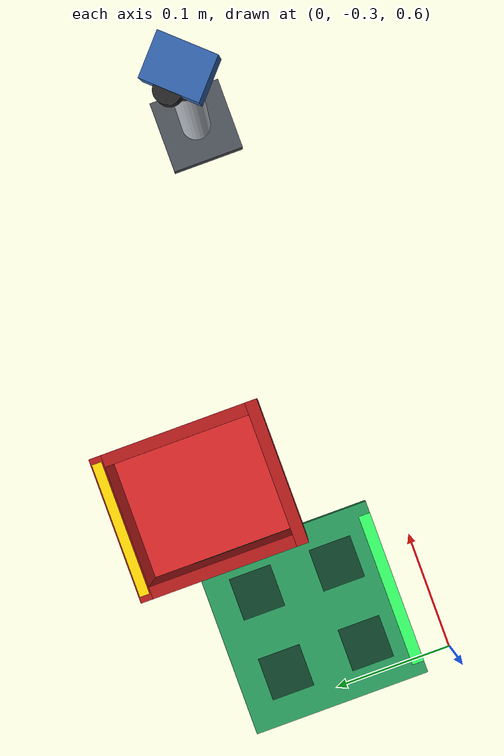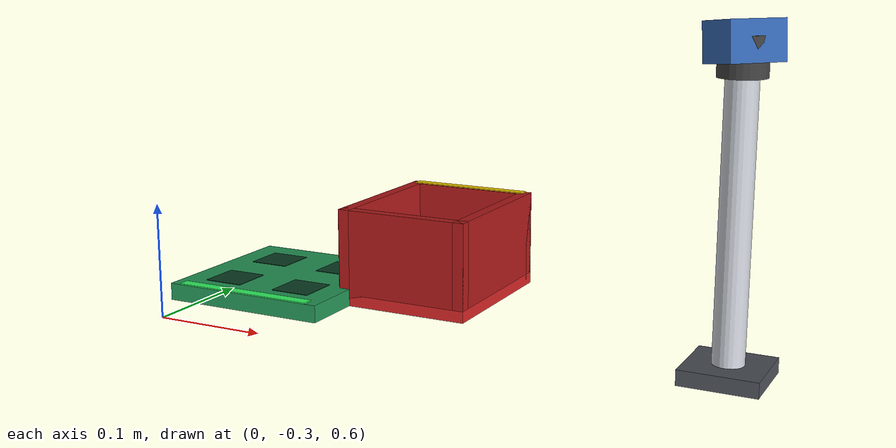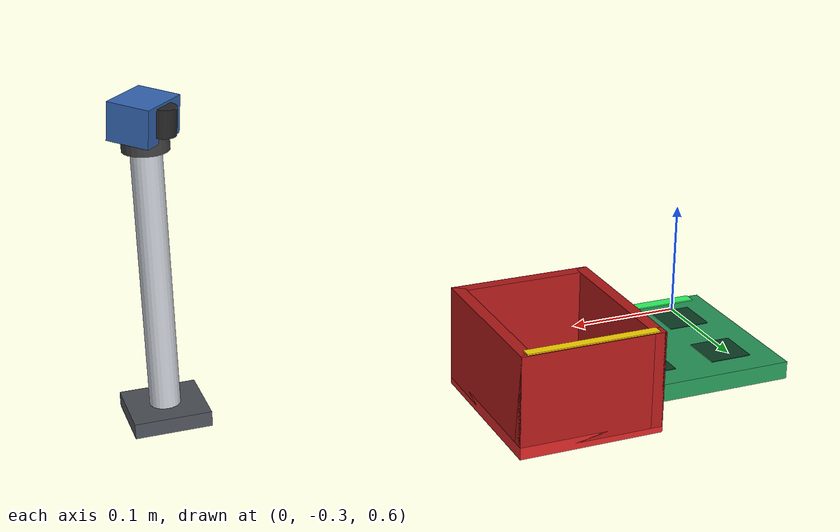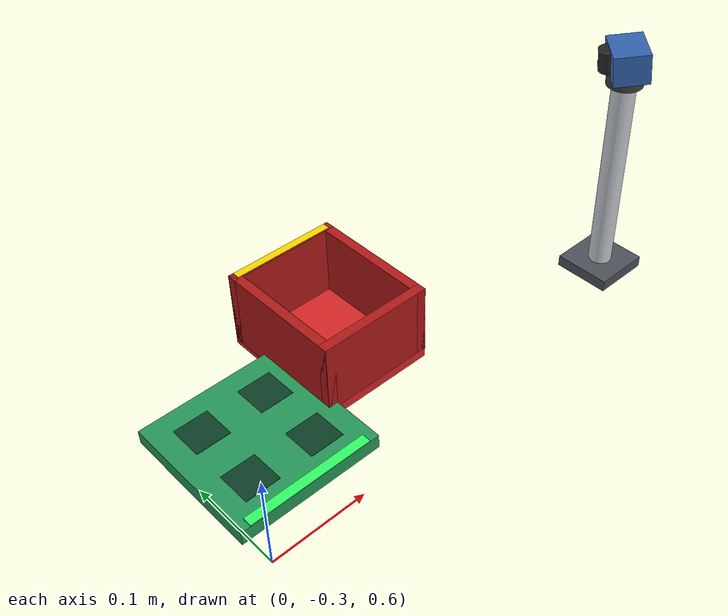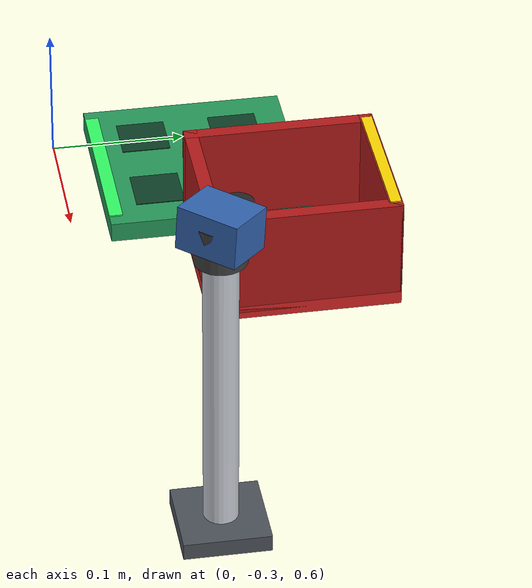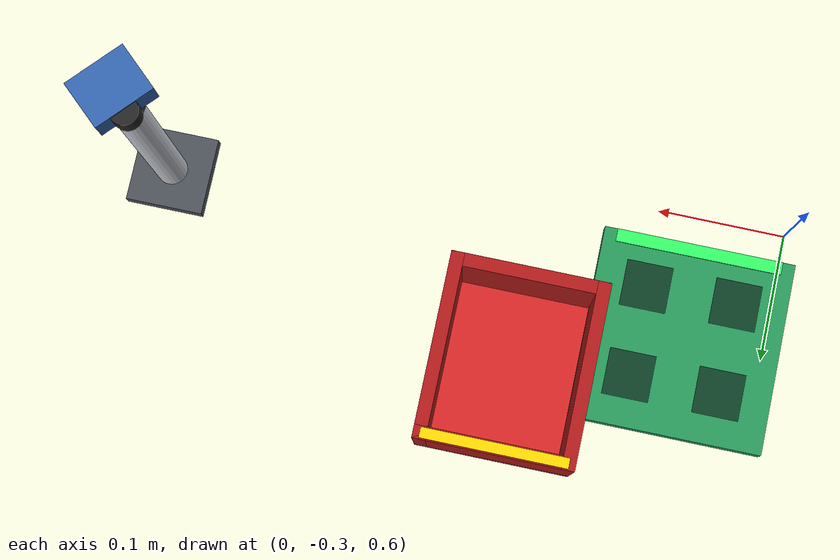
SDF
<sdf version="1.6">
 <world name="default">
  <model name="side_inspection_rig">
   <static>true</static>
   <pose>0.48 -0.25 0.608 0 0 0</pose>
   <link name="link">
    <collision name="pedestal_col">
     <pose>0 0 0.006 0 0 0</pose>
     <geometry><box><size>0.06 0.06 0.012</size></box></geometry>
    </collision>
    <visual name="pedestal_vis">
     <pose>0 0 0.006 0 0 0</pose>
     <geometry><box><size>0.06 0.06 0.012</size></box></geometry>
     <material><ambient>0.2 0.22 0.25 1</ambient><diffuse>0.3 0.32 0.35 1</diffuse></material>
    </visual>
    <collision name="post_col">
     <pose>0 0 0.125 0 0 0</pose>
     <geometry><cylinder><radius>0.012</radius><length>0.230</length></cylinder></geometry>
    </collision>
    <visual name="post_vis">
     <pose>0 0 0.125 0 0 0</pose>
     <geometry><cylinder><radius>0.012</radius><length>0.230</length></cylinder></geometry>
     <material>
      <ambient>0.65 0.68 0.72 1</ambient>
      <diffuse>0.8 0.82 0.85 1</diffuse>
      <specular>0.9 0.9 0.95 1</specular>
     </material>
    </visual>
    <visual name="knuckle_vis">
     <pose>0 0 0.235 0 0 0</pose>
     <geometry><cylinder><radius>0.018</radius><length>0.030</length></cylinder></geometry>
     <material><ambient>0.2 0.2 0.2 1</ambient><diffuse>0.25 0.25 0.25 1</diffuse></material>
    </visual>
    <visual name="side_cam_housing">
     <pose>0 0 0.245 0 0.10 2.40</pose>
     <geometry><box><size>0.035 0.045 0.030</size></box></geometry>
     <material>
      <ambient>0.15 0.30 0.55 1</ambient>
      <diffuse>0.2 0.4 0.7 1</diffuse>
      <specular>0.6 0.7 0.8 1</specular>
     </material>
    </visual>
    <visual name="side_cam_lens">
     <pose>-0.012 0.013 0.245 0 0.10 2.40</pose>
     <geometry><cylinder><radius>0.010</radius><length>0.022</length></cylinder></geometry>
     <material>
      <ambient>0.1 0.1 0.1 1</ambient>
      <diffuse>0.15 0.15 0.15 1</diffuse>
      <specular>0.8 0.8 0.8 1</specular>
     </material>
    </visual>
    <sensor name="side_camera" type="camera">
     <pose>0 0 0.245 0 0.10 2.40</pose>
     <always_on>true</always_on>
     <update_rate>30</update_rate>
     <visualize>false</visualize>
     <camera>
      <horizontal_fov>1.15</horizontal_fov>
      <image><width>1280</width><height>720</height><format>R8G8B8</format></image>
      <clip><near>0.01</near><far>10.0</far></clip>
     </camera>
     <plugin name="side_camera_driver" filename="libgazebo_ros_camera.so">
      <ros>
       <remapping>~/image_raw:=/side_camera/image_raw</remapping>
       <remapping>~/camera_info:=/side_camera/camera_info</remapping>
      </ros>
      <camera_name>side_camera</camera_name>
      <frame_name>side_camera_link</frame_name>
     </plugin>
    </sensor>
   </link>
  </model>
  <model name="assembly_finished_tray">
   <static>true</static>
   <pose>0.065 -0.200 0.608 0 0 0</pose>
   <link name="tray_link">
    <collision name="base_col">
     <pose>0 0 0.0075 0 0 0</pose>
     <geometry><box><size>0.15 0.15 0.015</size></box></geometry>
     <surface>
      <friction><ode><mu>1.5</mu><mu2>1.5</mu2></ode></friction>
      <contact>
       <ode><kp>500000.0</kp><kd>500.0</kd><max_vel>0.005</max_vel><min_depth>0.001</min_depth></ode>
      </contact>
      <bounce><restitution_coefficient>0.0</restitution_coefficient><threshold>1000000.0</threshold></bounce>
     </surface>
    </collision>
    <visual name="base_vis">
     <pose>0 0 0.0075 0 0 0</pose>
     <geometry><box><size>0.15 0.15 0.015</size></box></geometry>
     <material>
      <ambient>0.1 0.45 0.25 1</ambient>
      <diffuse>0.15 0.60 0.35 1</diffuse>
      <specular>0.6 0.7 0.6 1</specular>
     </material>
    </visual>
    <visual name="pocket_1">
     <pose>-0.035 -0.035 0.0151 0 0 0</pose>
     <geometry><box><size>0.036 0.036 0.001</size></box></geometry>
     <material><ambient>0.05 0.25 0.15 1</ambient></material>
    </visual>
    <visual name="pocket_2">
     <pose>0.035 -0.035 0.0151 0 0 0</pose>
     <geometry><box><size>0.036 0.036 0.001</size></box></geometry>
     <material><ambient>0.05 0.25 0.15 1</ambient></material>
    </visual>
    <visual name="pocket_3">
     <pose>-0.035  0.035 0.0151 0 0 0</pose>
     <geometry><box><size>0.036 0.036 0.001</size></box></geometry>
     <material><ambient>0.05 0.25 0.15 1</ambient></material>
    </visual>
    <visual name="pocket_4">
     <pose>0.035  0.035 0.0151 0 0 0</pose>
     <geometry><box><size>0.036 0.036 0.001</size></box></geometry>
     <material><ambient>0.05 0.25 0.15 1</ambient></material>
    </visual>
    <visual name="pass_label">
     <pose>0 -0.070 0.0155 0 0 0</pose>
     <geometry><box><size>0.13 0.010 0.001</size></box></geometry>
     <material><ambient>0.1 0.9 0.3 1</ambient><diffuse>0.2 1.0 0.4 1</diffuse></material>
    </visual>
   </link>
  </model>
  <model name="reject_bin">
   <static>true</static>
   <pose>0.190 -0.150 0.608 0 0 0</pose>
   <link name="bin_link">
    <collision name="bottom_col">
     <pose>0 0 0.005 0 0 0</pose>
     <geometry><box><size>0.12 0.14 0.010</size></box></geometry>
     <surface>
      <friction><ode><mu>1.2</mu><mu2>1.2</mu2></ode></friction>
      <contact>
       <ode><kp>500000.0</kp><kd>500.0</kd><max_vel>0.005</max_vel><min_depth>0.001</min_depth></ode>
      </contact>
      <bounce><restitution_coefficient>0.0</restitution_coefficient><threshold>1000000.0</threshold></bounce>
     </surface>
    </collision>
    <visual name="bottom_vis">
     <pose>0 0 0.005 0 0 0</pose>
     <geometry><box><size>0.12 0.14 0.010</size></box></geometry>
     <material><ambient>0.7 0.1 0.1 1</ambient><diffuse>0.85 0.15 0.15 1</diffuse></material>
    </visual>
    <collision name="n_wall_col">
     <pose>0 0.065 0.045 0 0 0</pose>
     <geometry><box><size>0.12 0.010 0.080</size></box></geometry>
     <surface>
      <friction><ode><mu>0.8</mu><mu2>0.8</mu2></ode></friction>
      <bounce><restitution_coefficient>0.0</restitution_coefficient><threshold>1000000.0</threshold></bounce>
     </surface>
    </collision>
    <visual name="n_wall_vis">
     <pose>0 0.065 0.045 0 0 0</pose>
     <geometry><box><size>0.12 0.010 0.080</size></box></geometry>
     <material><ambient>0.7 0.1 0.1 1</ambient></material>
    </visual>
    <collision name="s_wall_col">
     <pose>0 -0.065 0.045 0 0 0</pose>
     <geometry><box><size>0.12 0.010 0.080</size></box></geometry>
     <surface>
      <friction><ode><mu>0.8</mu><mu2>0.8</mu2></ode></friction>
      <bounce><restitution_coefficient>0.0</restitution_coefficient><threshold>1000000.0</threshold></bounce>
     </surface>
    </collision>
    <visual name="s_wall_vis">
     <pose>0 -0.065 0.045 0 0 0</pose>
     <geometry><box><size>0.12 0.010 0.080</size></box></geometry>
     <material><ambient>0.7 0.1 0.1 1</ambient></material>
    </visual>
    <collision name="e_wall_col">
     <pose>0.055 0 0.045 0 0 0</pose>
     <geometry><box><size>0.010 0.14 0.080</size></box></geometry>
     <surface>
      <friction><ode><mu>0.8</mu><mu2>0.8</mu2></ode></friction>
      <bounce><restitution_coefficient>0.0</restitution_coefficient><threshold>1000000.0</threshold></bounce>
     </surface>
    </collision>
    <visual name="e_wall_vis">
     <pose>0.055 0 0.045 0 0 0</pose>
     <geometry><box><size>0.010 0.14 0.080</size></box></geometry>
     <material><ambient>0.7 0.1 0.1 1</ambient></material>
    </visual>
    <collision name="w_wall_col">
     <pose>-0.055 0 0.045 0 0 0</pose>
     <geometry><box><size>0.010 0.14 0.080</size></box></geometry>
     <surface>
      <friction><ode><mu>0.8</mu><mu2>0.8</mu2></ode></friction>
      <bounce><restitution_coefficient>0.0</restitution_coefficient><threshold>1000000.0</threshold></bounce>
     </surface>
    </collision>
    <visual name="w_wall_vis">
     <pose>-0.055 0 0.045 0 0 0</pose>
     <geometry><box><size>0.010 0.14 0.080</size></box></geometry>
     <material><ambient>0.7 0.1 0.1 1</ambient></material>
    </visual>
    <visual name="reject_rim_stripe">
     <pose>0 0.065 0.085 0 0 0</pose>
     <geometry><box><size>0.11 0.008 0.002</size></box></geometry>
     <material><ambient>0.9 0.8 0.1 1</ambient><diffuse>1.0 0.85 0.0 1</diffuse></material>
    </visual>
   </link>
  </model>
 </world>
</sdf>
